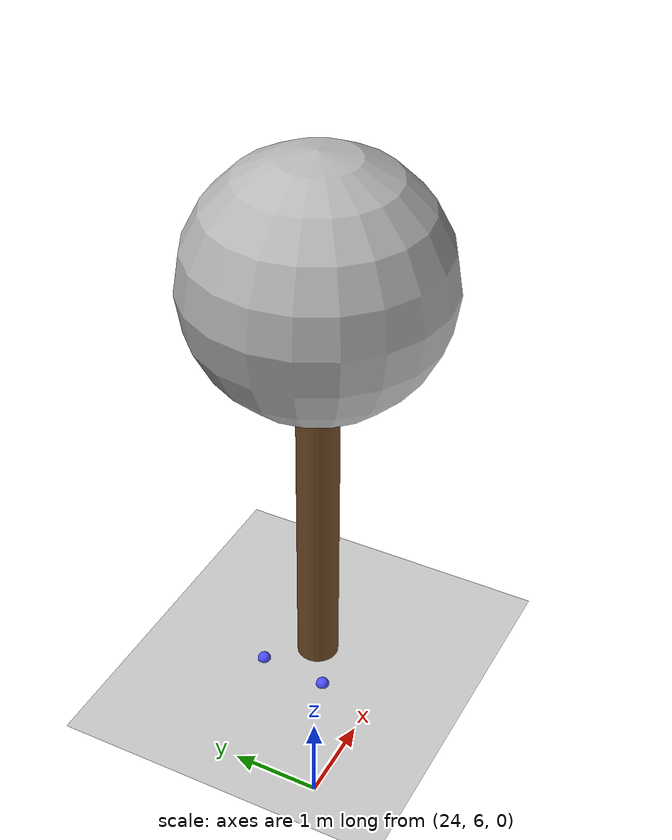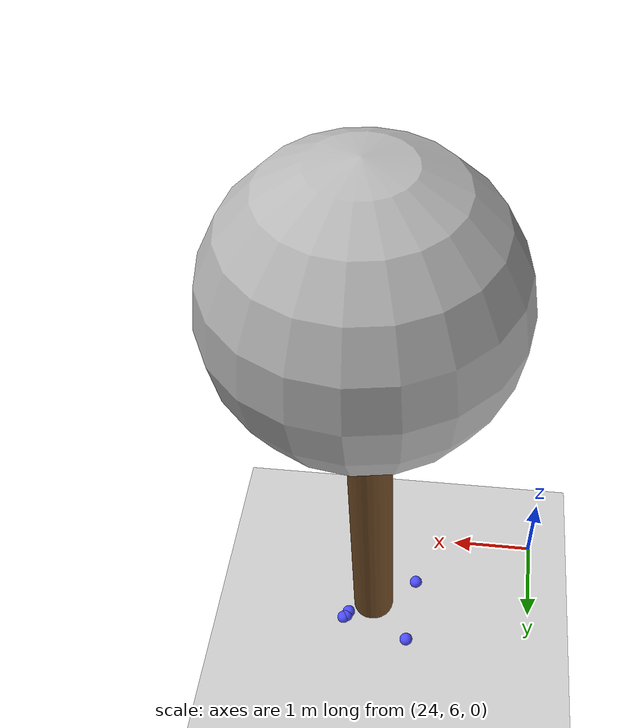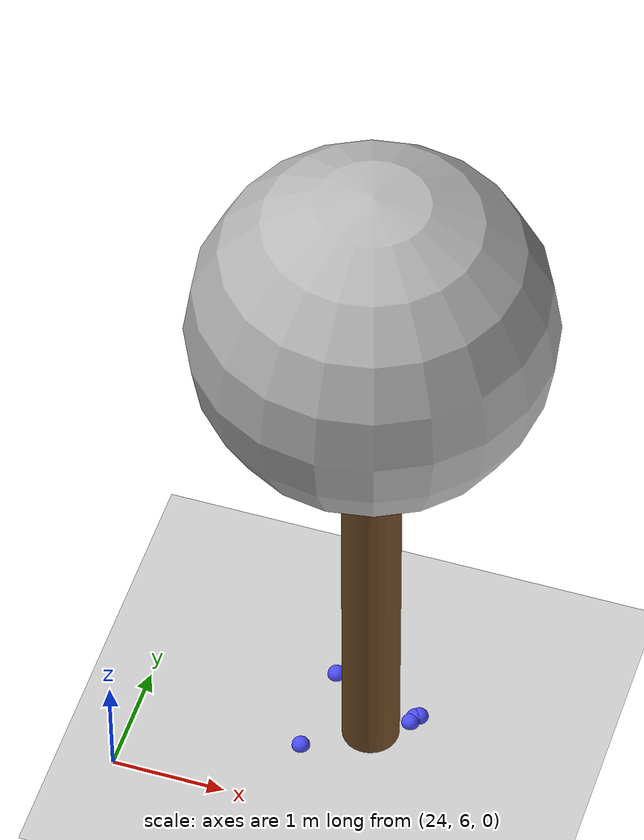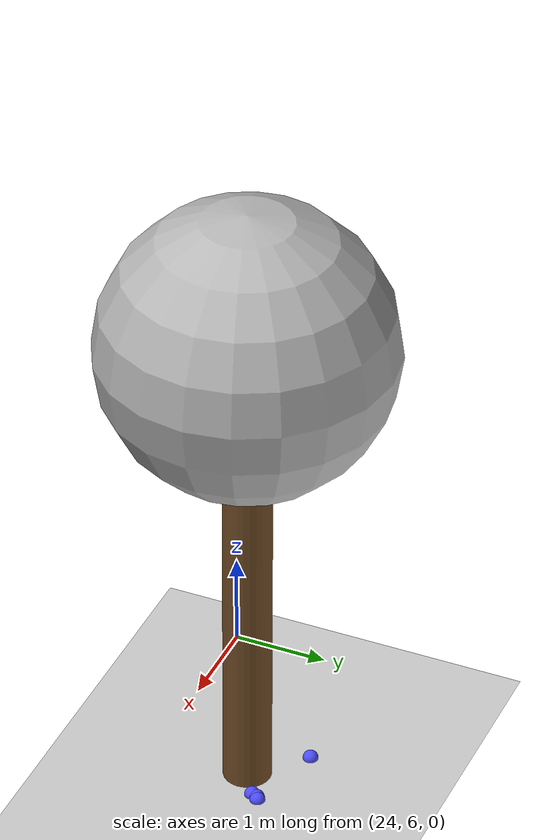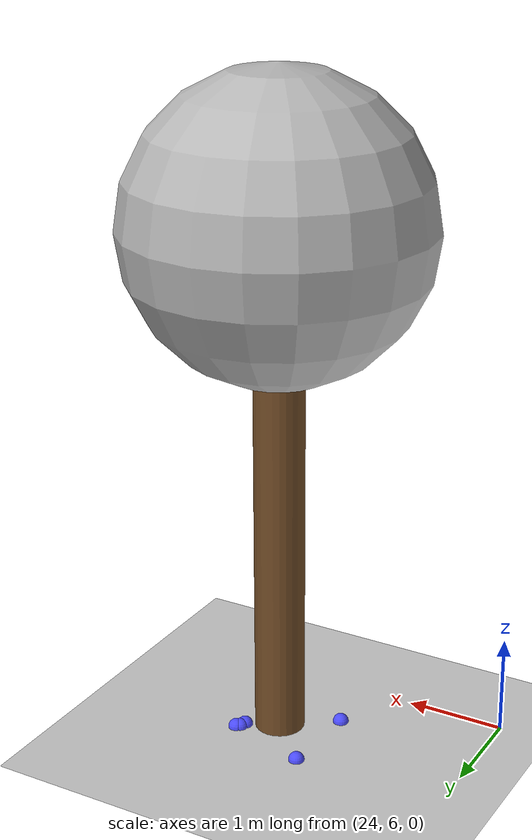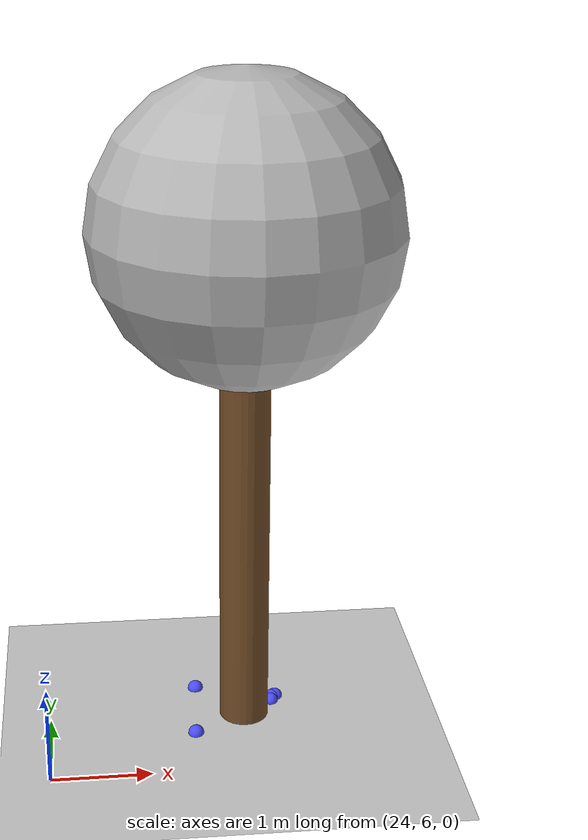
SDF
<sdf version="1.7">
 <world name="default">
  <model name="ground_plane">
   <static>1</static>
   <link name="link">
    <collision name="collision">
     <geometry><plane><normal>0 0 1</normal><size>100 100</size></plane></geometry>
     <surface>
      <contact><collide_bitmask>65535</collide_bitmask></contact>
      <friction><ode><mu>100</mu><mu2>50</mu2></ode></friction>
     </surface>
    </collision>
    <visual name="visual">
     <cast_shadows>0</cast_shadows>
     <geometry><plane><normal>0 0 1</normal><size>100 100</size></plane></geometry>
     <material>
      <script><uri>file://media/materials/scripts/gazebo.material</uri><name>Gazebo/Grey</name></script>
     </material>
    </visual>
   </link>
  </model>
  <model name="tree_simple_79">
   <static>1</static>
   <link name="link">
    <pose>0 0 0.1 0 -0 0</pose>
    <inertial>
     <mass>666</mass>
     <inertia>
      <ixx>0.0861167</ixx>
      <ixy>0</ixy>
      <ixz>0</ixz>
      <iyy>0.0861167</iyy>
      <iyz>0</iyz>
      <izz>0.0861167</izz>
     </inertia>
    </inertial>
    <collision name="collision_trunk">
     <pose>0 0 2 0 -0 0</pose>
     <geometry><cylinder><radius>0.25</radius><length>4</length></cylinder></geometry>
     <surface>
      <contact>
       <poissons_ratio>0.347</poissons_ratio>
       <elastic_modulus>8.8e+09</elastic_modulus>
       <ode><kp>100000</kp><kd>100</kd><max_vel>100</max_vel><min_depth>0.001</min_depth></ode>
      </contact>
      <friction>
       <torsional>
        <coefficient>1</coefficient>
        <use_patch_radius>0</use_patch_radius>
        <surface_radius>0.01</surface_radius>
       </torsional>
      </friction>
     </surface>
    </collision>
    <collision name="collision_treetop">
     <pose>0 0 5.2 0 -0 0</pose>
     <geometry><sphere><radius>1.5</radius></sphere></geometry>
     <surface>
      <contact>
       <poissons_ratio>0.347</poissons_ratio>
       <elastic_modulus>8.8e+09</elastic_modulus>
       <ode><kp>100000</kp><kd>100</kd><max_vel>100</max_vel><min_depth>0.001</min_depth></ode>
      </contact>
      <friction>
       <torsional>
        <coefficient>1</coefficient>
        <use_patch_radius>0</use_patch_radius>
        <surface_radius>0.01</surface_radius>
       </torsional>
      </friction>
     </surface>
    </collision>
    <visual name="trunk">
     <pose>0 0 2 0 -0 0</pose>
     <geometry><cylinder><radius>0.25</radius><length>4</length></cylinder></geometry>
     <material>
      <script>
       <uri>model://tree_simple/scripts</uri>
       <uri>model://tree_simple/materials/textures</uri>
       <name>TreeSimple/Trunk</name>
      </script>
     </material>
    </visual>
    <visual name="treetop">
     <pose>0 0 5.2 0 -0 0</pose>
     <geometry><sphere><radius>1.5</radius></sphere></geometry>
     <material>
      <script>
       <uri>model://tree_simple/scripts</uri>
       <uri>model://tree_simple/materials/textures</uri>
       <name>TreeSimple/Treetop</name>
      </script>
     </material>
    </visual>
   </link>
   <pose>26 7 -0.1 0 -0 0</pose>
  </model>
  <model name="seed_blue_164">
   <link name="link">
    <inertial>
     <mass>1</mass>
     <inertia><ixx>0.1</ixx><ixy>0</ixy><ixz>0</ixz><iyy>0.1</iyy><iyz>0</iyz><izz>0.1</izz></inertia>
    </inertial>
    <visual name="visual">
     <geometry><sphere><radius>0.08</radius></sphere></geometry>
     <material>
      <script><name>Gazebo/Grey</name><uri>file://media/materials/scripts/gazebo.material</uri></script>
      <shader type="pixel"><normal_map>__default__</normal_map></shader>
      <ambient>0.3 0.3 1 1</ambient>
      <diffuse>0.7 0.7 0.7 1</diffuse>
      <specular>0.01 0.01 0.01 1</specular>
      <emissive>0 0 0 1</emissive>
     </material>
    </visual>
    <collision name="collision">
     <geometry><sphere><radius>0.0005</radius></sphere></geometry>
     <surface>
      <friction>
       <ode><mu>1</mu><mu2>1</mu2><fdir1>0 0 0</fdir1><slip1>0</slip1><slip2>0</slip2></ode>
       <torsional>
        <coefficient>1</coefficient>
        <patch_radius>0</patch_radius>
        <surface_radius>0</surface_radius>
        <use_patch_radius>1</use_patch_radius>
        <ode><slip>0</slip></ode>
       </torsional>
      </friction>
      <bounce><restitution_coefficient>0</restitution_coefficient><threshold>1e+06</threshold></bounce>
      <contact>
       <collide_without_contact>0</collide_without_contact>
       <collide_without_contact_bitmask>1</collide_without_contact_bitmask>
       <collide_bitmask>1</collide_bitmask>
       <ode>
        <soft_cfm>0</soft_cfm>
        <soft_erp>0.2</soft_erp>
        <kp>1e+13</kp>
        <kd>1</kd>
        <max_vel>0.01</max_vel>
        <min_depth>0</min_depth>
       </ode>
       <bullet>
        <split_impulse>1</split_impulse>
        <split_impulse_penetration_threshold>-0.01</split_impulse_penetration_threshold>
        <soft_cfm>0</soft_cfm>
        <soft_erp>0.2</soft_erp>
        <kp>1e+13</kp>
        <kd>1</kd>
       </bullet>
      </contact>
     </surface>
    </collision>
   </link>
   <static>0</static>
   <pose>25.4757 6.66347 0.0005 0 -0 0</pose>
  </model>
  <model name="seed_blue_168">
   <link name="link">
    <inertial>
     <mass>1</mass>
     <inertia><ixx>0.1</ixx><ixy>0</ixy><ixz>0</ixz><iyy>0.1</iyy><iyz>0</iyz><izz>0.1</izz></inertia>
    </inertial>
    <visual name="visual">
     <geometry><sphere><radius>0.08</radius></sphere></geometry>
     <material>
      <script><name>Gazebo/Grey</name><uri>file://media/materials/scripts/gazebo.material</uri></script>
      <shader type="pixel"><normal_map>__default__</normal_map></shader>
      <ambient>0.3 0.3 1 1</ambient>
      <diffuse>0.7 0.7 0.7 1</diffuse>
      <specular>0.01 0.01 0.01 1</specular>
      <emissive>0 0 0 1</emissive>
     </material>
    </visual>
    <collision name="collision">
     <geometry><sphere><radius>0.0005</radius></sphere></geometry>
     <surface>
      <friction>
       <ode><mu>1</mu><mu2>1</mu2><fdir1>0 0 0</fdir1><slip1>0</slip1><slip2>0</slip2></ode>
       <torsional>
        <coefficient>1</coefficient>
        <patch_radius>0</patch_radius>
        <surface_radius>0</surface_radius>
        <use_patch_radius>1</use_patch_radius>
        <ode><slip>0</slip></ode>
       </torsional>
      </friction>
      <bounce><restitution_coefficient>0</restitution_coefficient><threshold>1e+06</threshold></bounce>
      <contact>
       <collide_without_contact>0</collide_without_contact>
       <collide_without_contact_bitmask>1</collide_without_contact_bitmask>
       <collide_bitmask>1</collide_bitmask>
       <ode>
        <soft_cfm>0</soft_cfm>
        <soft_erp>0.2</soft_erp>
        <kp>1e+13</kp>
        <kd>1</kd>
        <max_vel>0.01</max_vel>
        <min_depth>0</min_depth>
       </ode>
       <bullet>
        <split_impulse>1</split_impulse>
        <split_impulse_penetration_threshold>-0.01</split_impulse_penetration_threshold>
        <soft_cfm>0</soft_cfm>
        <soft_erp>0.2</soft_erp>
        <kp>1e+13</kp>
        <kd>1</kd>
       </bullet>
      </contact>
     </surface>
    </collision>
   </link>
   <static>0</static>
   <pose>26.3024 7.18475 0.0005 0 -0 0</pose>
  </model>
  <model name="seed_blue_174">
   <link name="link">
    <inertial>
     <mass>1</mass>
     <inertia><ixx>0.1</ixx><ixy>0</ixy><ixz>0</ixz><iyy>0.1</iyy><iyz>0</iyz><izz>0.1</izz></inertia>
    </inertial>
    <visual name="visual">
     <geometry><sphere><radius>0.08</radius></sphere></geometry>
     <material>
      <script><name>Gazebo/Grey</name><uri>file://media/materials/scripts/gazebo.material</uri></script>
      <shader type="pixel"><normal_map>__default__</normal_map></shader>
      <ambient>0.3 0.3 1 1</ambient>
      <diffuse>0.7 0.7 0.7 1</diffuse>
      <specular>0.01 0.01 0.01 1</specular>
      <emissive>0 0 0 1</emissive>
     </material>
    </visual>
    <collision name="collision">
     <geometry><sphere><radius>0.0005</radius></sphere></geometry>
     <surface>
      <friction>
       <ode><mu>1</mu><mu2>1</mu2><fdir1>0 0 0</fdir1><slip1>0</slip1><slip2>0</slip2></ode>
       <torsional>
        <coefficient>1</coefficient>
        <patch_radius>0</patch_radius>
        <surface_radius>0</surface_radius>
        <use_patch_radius>1</use_patch_radius>
        <ode><slip>0</slip></ode>
       </torsional>
      </friction>
      <bounce><restitution_coefficient>0</restitution_coefficient><threshold>1e+06</threshold></bounce>
      <contact>
       <collide_without_contact>0</collide_without_contact>
       <collide_without_contact_bitmask>1</collide_without_contact_bitmask>
       <collide_bitmask>1</collide_bitmask>
       <ode>
        <soft_cfm>0</soft_cfm>
        <soft_erp>0.2</soft_erp>
        <kp>1e+13</kp>
        <kd>1</kd>
        <max_vel>0.01</max_vel>
        <min_depth>0</min_depth>
       </ode>
       <bullet>
        <split_impulse>1</split_impulse>
        <split_impulse_penetration_threshold>-0.01</split_impulse_penetration_threshold>
        <soft_cfm>0</soft_cfm>
        <soft_erp>0.2</soft_erp>
        <kp>1e+13</kp>
        <kd>1</kd>
       </bullet>
      </contact>
     </surface>
    </collision>
   </link>
   <static>0</static>
   <pose>26.3577 7.2673 0.0005 0 -0 0</pose>
  </model>
  <model name="seed_blue_176">
   <link name="link">
    <inertial>
     <mass>1</mass>
     <inertia><ixx>0.1</ixx><ixy>0</ixy><ixz>0</ixz><iyy>0.1</iyy><iyz>0</iyz><izz>0.1</izz></inertia>
    </inertial>
    <visual name="visual">
     <geometry><sphere><radius>0.08</radius></sphere></geometry>
     <material>
      <script><name>Gazebo/Grey</name><uri>file://media/materials/scripts/gazebo.material</uri></script>
      <shader type="pixel"><normal_map>__default__</normal_map></shader>
      <ambient>0.3 0.3 1 1</ambient>
      <diffuse>0.7 0.7 0.7 1</diffuse>
      <specular>0.01 0.01 0.01 1</specular>
      <emissive>0 0 0 1</emissive>
     </material>
    </visual>
    <collision name="collision">
     <geometry><sphere><radius>0.0005</radius></sphere></geometry>
     <surface>
      <friction>
       <ode><mu>1</mu><mu2>1</mu2><fdir1>0 0 0</fdir1><slip1>0</slip1><slip2>0</slip2></ode>
       <torsional>
        <coefficient>1</coefficient>
        <patch_radius>0</patch_radius>
        <surface_radius>0</surface_radius>
        <use_patch_radius>1</use_patch_radius>
        <ode><slip>0</slip></ode>
       </torsional>
      </friction>
      <bounce><restitution_coefficient>0</restitution_coefficient><threshold>1e+06</threshold></bounce>
      <contact>
       <collide_without_contact>0</collide_without_contact>
       <collide_without_contact_bitmask>1</collide_without_contact_bitmask>
       <collide_bitmask>1</collide_bitmask>
       <ode>
        <soft_cfm>0</soft_cfm>
        <soft_erp>0.2</soft_erp>
        <kp>1e+13</kp>
        <kd>1</kd>
        <max_vel>0.01</max_vel>
        <min_depth>0</min_depth>
       </ode>
       <bullet>
        <split_impulse>1</split_impulse>
        <split_impulse_penetration_threshold>-0.01</split_impulse_penetration_threshold>
        <soft_cfm>0</soft_cfm>
        <soft_erp>0.2</soft_erp>
        <kp>1e+13</kp>
        <kd>1</kd>
       </bullet>
      </contact>
     </surface>
    </collision>
   </link>
   <static>0</static>
   <pose>26.3259 7.24561 0.0005 0 -0 0</pose>
  </model>
  <model name="seed_blue_177">
   <link name="link">
    <inertial>
     <mass>1</mass>
     <inertia><ixx>0.1</ixx><ixy>0</ixy><ixz>0</ixz><iyy>0.1</iyy><iyz>0</iyz><izz>0.1</izz></inertia>
    </inertial>
    <visual name="visual">
     <geometry><sphere><radius>0.08</radius></sphere></geometry>
     <material>
      <script><name>Gazebo/Grey</name><uri>file://media/materials/scripts/gazebo.material</uri></script>
      <shader type="pixel"><normal_map>__default__</normal_map></shader>
      <ambient>0.3 0.3 1 1</ambient>
      <diffuse>0.7 0.7 0.7 1</diffuse>
      <specular>0.01 0.01 0.01 1</specular>
      <emissive>0 0 0 1</emissive>
     </material>
    </visual>
    <collision name="collision">
     <geometry><sphere><radius>0.0005</radius></sphere></geometry>
     <surface>
      <friction>
       <ode><mu>1</mu><mu2>1</mu2><fdir1>0 0 0</fdir1><slip1>0</slip1><slip2>0</slip2></ode>
       <torsional>
        <coefficient>1</coefficient>
        <patch_radius>0</patch_radius>
        <surface_radius>0</surface_radius>
        <use_patch_radius>1</use_patch_radius>
        <ode><slip>0</slip></ode>
       </torsional>
      </friction>
      <bounce><restitution_coefficient>0</restitution_coefficient><threshold>1e+06</threshold></bounce>
      <contact>
       <collide_without_contact>0</collide_without_contact>
       <collide_without_contact_bitmask>1</collide_without_contact_bitmask>
       <collide_bitmask>1</collide_bitmask>
       <ode>
        <soft_cfm>0</soft_cfm>
        <soft_erp>0.2</soft_erp>
        <kp>1e+13</kp>
        <kd>1</kd>
        <max_vel>0.01</max_vel>
        <min_depth>0</min_depth>
       </ode>
       <bullet>
        <split_impulse>1</split_impulse>
        <split_impulse_penetration_threshold>-0.01</split_impulse_penetration_threshold>
        <soft_cfm>0</soft_cfm>
        <soft_erp>0.2</soft_erp>
        <kp>1e+13</kp>
        <kd>1</kd>
       </bullet>
      </contact>
     </surface>
    </collision>
   </link>
   <static>0</static>
   <pose>25.5319 7.49733 0.0005 0 -0 0</pose>
  </model>
 </world>
</sdf>
